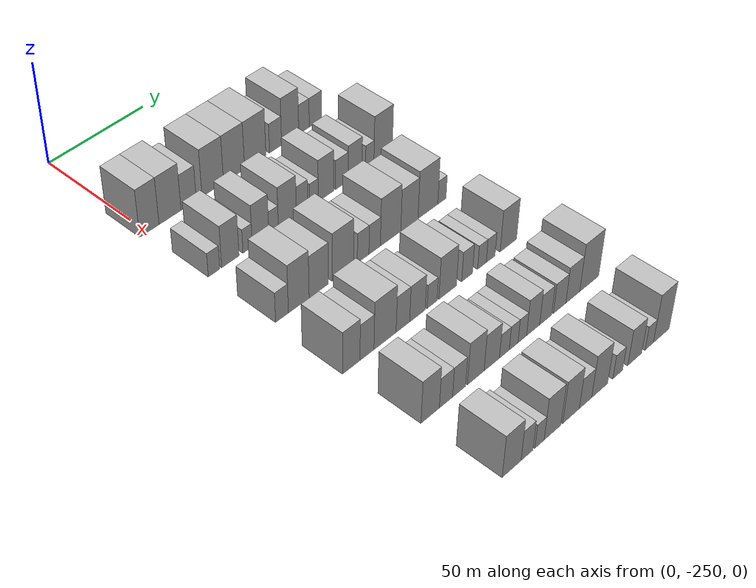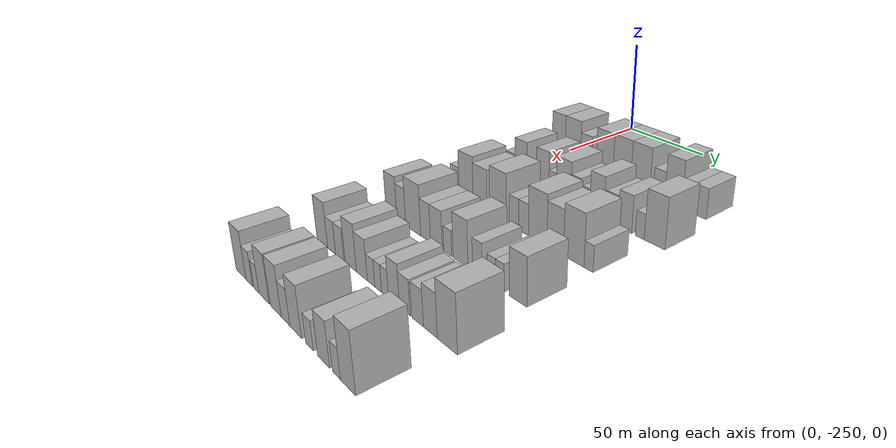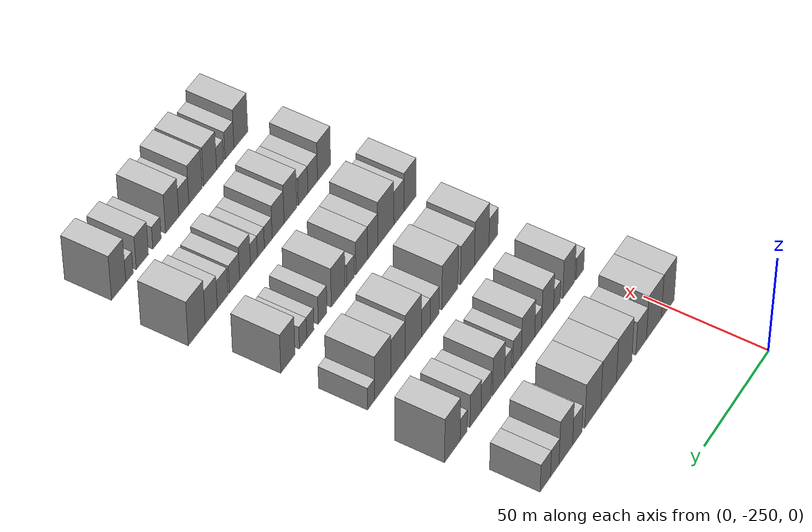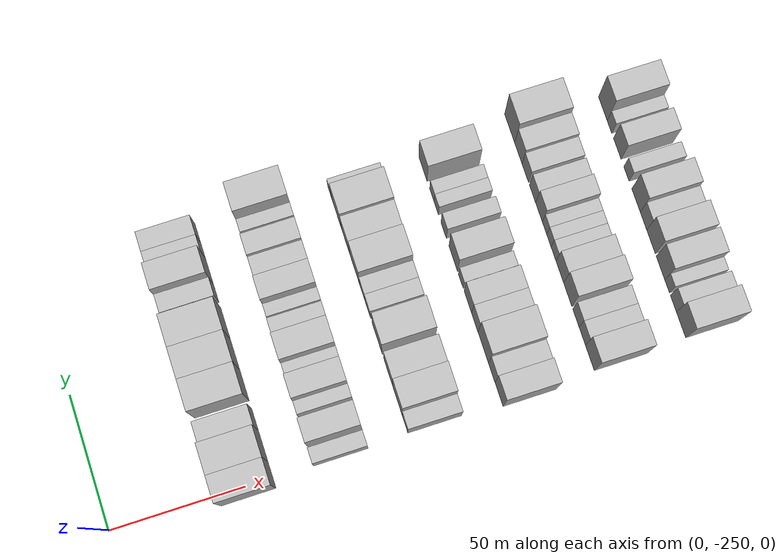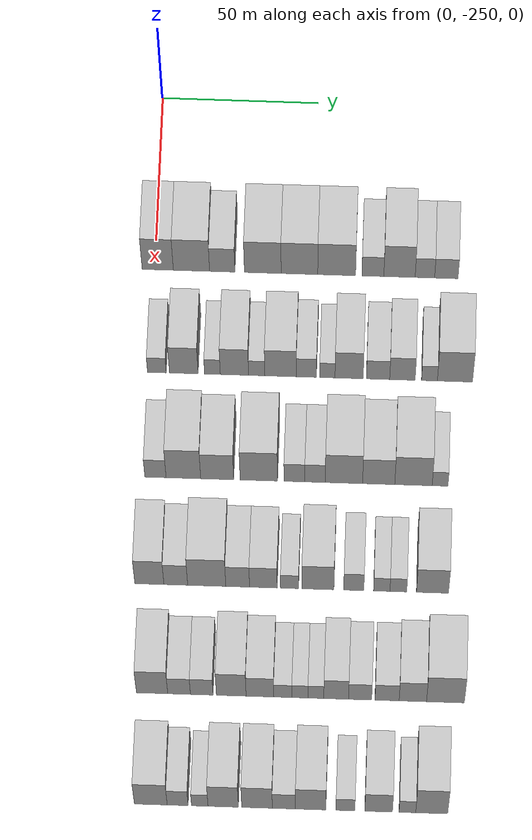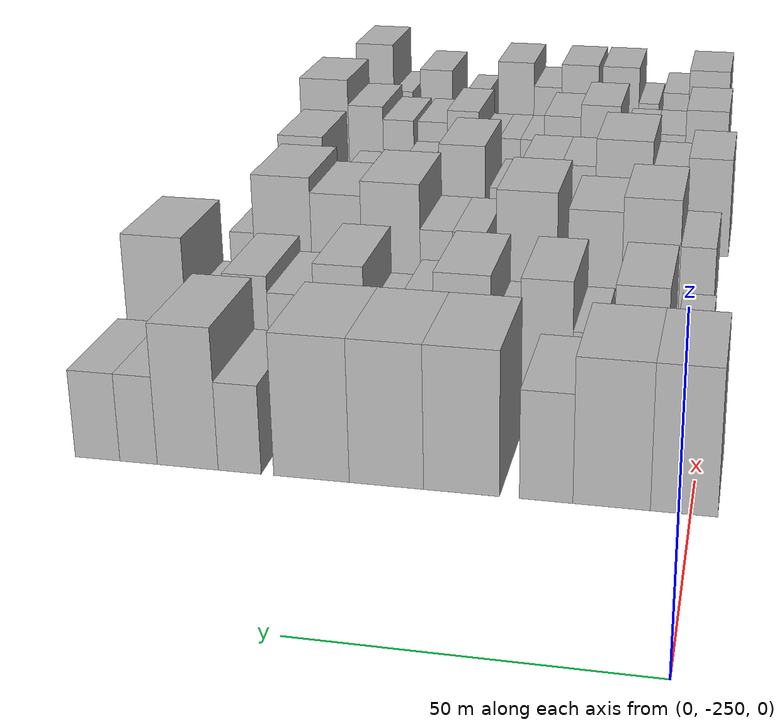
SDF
<sdf version="1.6">
 <world name="default">
  <model name="building_36">
   <static>1</static>
   <pose>50.0000 -248.9890 0 0.000000 0.000000 0.000000</pose>
   <link name="link">
    <pose>0 0 12.00 0 0 0</pose>
    <collision name="collision"><geometry><box><size>20.0000 9.8634 24.0000</size></box></geometry></collision>
    <visual name="visual">
     <cast_shadows>0</cast_shadows>
     <geometry><box><size>20.0000 9.8634 24.0000</size></box></geometry>
     <material>
      <script>
       <uri>model://HANNAS_wall/materials/scripts</uri>
       <uri>model://HANNAS_wall/materials/textures</uri>
       <name>vrc/HANNAS_wall</name>
      </script>
     </material>
    </visual>
   </link>
  </model>
  <model name="building_37">
   <static>1</static>
   <pose>50.0000 -238.3207 0 0.000000 0.000000 0.000000</pose>
   <link name="link">
    <pose>0 0 12.00 0 0 0</pose>
    <collision name="collision"><geometry><box><size>20.0000 11.4732 24.0000</size></box></geometry></collision>
    <visual name="visual">
     <cast_shadows>0</cast_shadows>
     <geometry><box><size>20.0000 11.4732 24.0000</size></box></geometry>
     <material>
      <script>
       <uri>model://HANNAS_wall/materials/scripts</uri>
       <uri>model://HANNAS_wall/materials/textures</uri>
       <name>vrc/HANNAS_wall</name>
      </script>
     </material>
    </visual>
   </link>
  </model>
  <model name="building_38">
   <static>1</static>
   <pose>50.0000 -228.5646 0 0.000000 0.000000 0.000000</pose>
   <link name="link">
    <pose>0 0 9.00 0 0 0</pose>
    <collision name="collision"><geometry><box><size>20.0000 8.0390 18.0000</size></box></geometry></collision>
    <visual name="visual">
     <cast_shadows>0</cast_shadows>
     <geometry><box><size>20.0000 8.0390 18.0000</size></box></geometry>
     <material>
      <script>
       <uri>model://HANNAS_wall/materials/scripts</uri>
       <uri>model://HANNAS_wall/materials/textures</uri>
       <name>vrc/HANNAS_wall</name>
      </script>
     </material>
    </visual>
   </link>
  </model>
  <model name="building_39">
   <static>1</static>
   <pose>50.0000 -215.7369 0 0.000000 0.000000 0.000000</pose>
   <link name="link">
    <pose>0 0 12.00 0 0 0</pose>
    <collision name="collision"><geometry><box><size>20.0000 11.6163 24.0000</size></box></geometry></collision>
    <visual name="visual">
     <cast_shadows>0</cast_shadows>
     <geometry><box><size>20.0000 11.6163 24.0000</size></box></geometry>
     <material>
      <script>
       <uri>model://HANNAS_wall/materials/scripts</uri>
       <uri>model://HANNAS_wall/materials/textures</uri>
       <name>vrc/HANNAS_wall</name>
      </script>
     </material>
    </visual>
   </link>
  </model>
  <model name="building_40">
   <static>1</static>
   <pose>50.0000 -204.1400 0 0.000000 0.000000 0.000000</pose>
   <link name="link">
    <pose>0 0 12.00 0 0 0</pose>
    <collision name="collision"><geometry><box><size>20.0000 11.5776 24.0000</size></box></geometry></collision>
    <visual name="visual">
     <cast_shadows>0</cast_shadows>
     <geometry><box><size>20.0000 11.5776 24.0000</size></box></geometry>
     <material>
      <script>
       <uri>model://HANNAS_wall/materials/scripts</uri>
       <uri>model://HANNAS_wall/materials/textures</uri>
       <name>vrc/HANNAS_wall</name>
      </script>
     </material>
    </visual>
   </link>
  </model>
  <model name="building_41">
   <static>1</static>
   <pose>50.0000 -192.3746 0 0.000000 0.000000 0.000000</pose>
   <link name="link">
    <pose>0 0 12.00 0 0 0</pose>
    <collision name="collision"><geometry><box><size>20.0000 11.9531 24.0000</size></box></geometry></collision>
    <visual name="visual">
     <cast_shadows>0</cast_shadows>
     <geometry><box><size>20.0000 11.9531 24.0000</size></box></geometry>
     <material>
      <script>
       <uri>model://HANNAS_wall/materials/scripts</uri>
       <uri>model://HANNAS_wall/materials/textures</uri>
       <name>vrc/HANNAS_wall</name>
      </script>
     </material>
    </visual>
   </link>
  </model>
  <model name="building_42">
   <static>1</static>
   <pose>50.0000 -180.9370 0 0.000000 0.000000 0.000000</pose>
   <link name="link">
    <pose>0 0 7.50 0 0 0</pose>
    <collision name="collision"><geometry><box><size>20.0000 6.9222 15.0000</size></box></geometry></collision>
    <visual name="visual">
     <cast_shadows>0</cast_shadows>
     <geometry><box><size>20.0000 6.9222 15.0000</size></box></geometry>
     <material>
      <script>
       <uri>model://HANNAS_wall/materials/scripts</uri>
       <uri>model://HANNAS_wall/materials/textures</uri>
       <name>vrc/HANNAS_wall</name>
      </script>
     </material>
    </visual>
   </link>
  </model>
  <model name="building_43">
   <static>1</static>
   <pose>50.0000 -172.5213 0 0.000000 0.000000 0.000000</pose>
   <link name="link">
    <pose>0 0 12.00 0 0 0</pose>
    <collision name="collision"><geometry><box><size>20.0000 9.9091 24.0000</size></box></geometry></collision>
    <visual name="visual">
     <cast_shadows>0</cast_shadows>
     <geometry><box><size>20.0000 9.9091 24.0000</size></box></geometry>
     <material>
      <script>
       <uri>model://HANNAS_wall/materials/scripts</uri>
       <uri>model://HANNAS_wall/materials/textures</uri>
       <name>vrc/HANNAS_wall</name>
      </script>
     </material>
    </visual>
   </link>
  </model>
  <model name="building_44">
   <static>1</static>
   <pose>50.0000 -164.4903 0 0.000000 0.000000 0.000000</pose>
   <link name="link">
    <pose>0 0 7.50 0 0 0</pose>
    <collision name="collision"><geometry><box><size>20.0000 6.1529 15.0000</size></box></geometry></collision>
    <visual name="visual">
     <cast_shadows>0</cast_shadows>
     <geometry><box><size>20.0000 6.1529 15.0000</size></box></geometry>
     <material>
      <script>
       <uri>model://HANNAS_wall/materials/scripts</uri>
       <uri>model://HANNAS_wall/materials/textures</uri>
       <name>vrc/HANNAS_wall</name>
      </script>
     </material>
    </visual>
   </link>
  </model>
  <model name="building_45">
   <static>1</static>
   <pose>50.0000 -157.7162 0 0.000000 0.000000 0.000000</pose>
   <link name="link">
    <pose>0 0 7.50 0 0 0</pose>
    <collision name="collision"><geometry><box><size>20.0000 7.3955 15.0000</size></box></geometry></collision>
    <visual name="visual">
     <cast_shadows>0</cast_shadows>
     <geometry><box><size>20.0000 7.3955 15.0000</size></box></geometry>
     <material>
      <script>
       <uri>model://HANNAS_wall/materials/scripts</uri>
       <uri>model://HANNAS_wall/materials/textures</uri>
       <name>vrc/HANNAS_wall</name>
      </script>
     </material>
    </visual>
   </link>
  </model>
  <model name="building_163">
   <static>1</static>
   <pose>85.0000 -247.6620 0 0.000000 0.000000 0.000000</pose>
   <link name="link">
    <pose>0 0 6.00 0 0 0</pose>
    <collision name="collision"><geometry><box><size>20.0000 5.8705 12.0000</size></box></geometry></collision>
    <visual name="visual">
     <cast_shadows>0</cast_shadows>
     <geometry><box><size>20.0000 5.8705 12.0000</size></box></geometry>
     <material>
      <script>
       <uri>model://HANNAS_wall/materials/scripts</uri>
       <uri>model://HANNAS_wall/materials/textures</uri>
       <name>vrc/HANNAS_wall</name>
      </script>
     </material>
    </visual>
   </link>
  </model>
  <model name="building_164">
   <static>1</static>
   <pose>85.0000 -239.2279 0 0.000000 0.000000 0.000000</pose>
   <link name="link">
    <pose>0 0 10.50 0 0 0</pose>
    <collision name="collision"><geometry><box><size>20.0000 8.9978 21.0000</size></box></geometry></collision>
    <visual name="visual">
     <cast_shadows>0</cast_shadows>
     <geometry><box><size>20.0000 8.9978 21.0000</size></box></geometry>
     <material>
      <script>
       <uri>model://HANNAS_wall/materials/scripts</uri>
       <uri>model://HANNAS_wall/materials/textures</uri>
       <name>vrc/HANNAS_wall</name>
      </script>
     </material>
    </visual>
   </link>
  </model>
  <model name="building_165">
   <static>1</static>
   <pose>85.0000 -230.2642 0 0.000000 0.000000 0.000000</pose>
   <link name="link">
    <pose>0 0 6.00 0 0 0</pose>
    <collision name="collision"><geometry><box><size>20.0000 4.9294 12.0000</size></box></geometry></collision>
    <visual name="visual">
     <cast_shadows>0</cast_shadows>
     <geometry><box><size>20.0000 4.9294 12.0000</size></box></geometry>
     <material>
      <script>
       <uri>model://HANNAS_wall/materials/scripts</uri>
       <uri>model://HANNAS_wall/materials/textures</uri>
       <name>vrc/HANNAS_wall</name>
      </script>
     </material>
    </visual>
   </link>
  </model>
  <model name="building_166">
   <static>1</static>
   <pose>85.0000 -223.3699 0 0.000000 0.000000 0.000000</pose>
   <link name="link">
    <pose>0 0 10.50 0 0 0</pose>
    <collision name="collision"><geometry><box><size>20.0000 8.8592 21.0000</size></box></geometry></collision>
    <visual name="visual">
     <cast_shadows>0</cast_shadows>
     <geometry><box><size>20.0000 8.8592 21.0000</size></box></geometry>
     <material>
      <script>
       <uri>model://HANNAS_wall/materials/scripts</uri>
       <uri>model://HANNAS_wall/materials/textures</uri>
       <name>vrc/HANNAS_wall</name>
      </script>
     </material>
    </visual>
   </link>
  </model>
  <model name="building_167">
   <static>1</static>
   <pose>85.0000 -216.3905 0 0.000000 0.000000 0.000000</pose>
   <link name="link">
    <pose>0 0 6.00 0 0 0</pose>
    <collision name="collision"><geometry><box><size>20.0000 5.0996 12.0000</size></box></geometry></collision>
    <visual name="visual">
     <cast_shadows>0</cast_shadows>
     <geometry><box><size>20.0000 5.0996 12.0000</size></box></geometry>
     <material>
      <script>
       <uri>model://HANNAS_wall/materials/scripts</uri>
       <uri>model://HANNAS_wall/materials/textures</uri>
       <name>vrc/HANNAS_wall</name>
      </script>
     </material>
    </visual>
   </link>
  </model>
  <model name="building_168">
   <static>1</static>
   <pose>85.0000 -208.9010 0 0.000000 0.000000 0.000000</pose>
   <link name="link">
    <pose>0 0 10.50 0 0 0</pose>
    <collision name="collision"><geometry><box><size>20.0000 9.8794 21.0000</size></box></geometry></collision>
    <visual name="visual">
     <cast_shadows>0</cast_shadows>
     <geometry><box><size>20.0000 9.8794 21.0000</size></box></geometry>
     <material>
      <script>
       <uri>model://HANNAS_wall/materials/scripts</uri>
       <uri>model://HANNAS_wall/materials/textures</uri>
       <name>vrc/HANNAS_wall</name>
      </script>
     </material>
    </visual>
   </link>
  </model>
  <model name="building_169">
   <static>1</static>
   <pose>85.0000 -200.8206 0 0.000000 0.000000 0.000000</pose>
   <link name="link">
    <pose>0 0 7.50 0 0 0</pose>
    <collision name="collision"><geometry><box><size>20.0000 6.2812 15.0000</size></box></geometry></collision>
    <visual name="visual">
     <cast_shadows>0</cast_shadows>
     <geometry><box><size>20.0000 6.2812 15.0000</size></box></geometry>
     <material>
      <script>
       <uri>model://HANNAS_wall/materials/scripts</uri>
       <uri>model://HANNAS_wall/materials/textures</uri>
       <name>vrc/HANNAS_wall</name>
      </script>
     </material>
    </visual>
   </link>
  </model>
  <model name="building_170">
   <static>1</static>
   <pose>85.0000 -194.2725 0 0.000000 0.000000 0.000000</pose>
   <link name="link">
    <pose>0 0 6.00 0 0 0</pose>
    <collision name="collision"><geometry><box><size>20.0000 4.8150 12.0000</size></box></geometry></collision>
    <visual name="visual">
     <cast_shadows>0</cast_shadows>
     <geometry><box><size>20.0000 4.8150 12.0000</size></box></geometry>
     <material>
      <script>
       <uri>model://HANNAS_wall/materials/scripts</uri>
       <uri>model://HANNAS_wall/materials/textures</uri>
       <name>vrc/HANNAS_wall</name>
      </script>
     </material>
    </visual>
   </link>
  </model>
  <model name="building_171">
   <static>1</static>
   <pose>85.0000 -187.4508 0 0.000000 0.000000 0.000000</pose>
   <link name="link">
    <pose>0 0 10.50 0 0 0</pose>
    <collision name="collision"><geometry><box><size>20.0000 8.8284 21.0000</size></box></geometry></collision>
    <visual name="visual">
     <cast_shadows>0</cast_shadows>
     <geometry><box><size>20.0000 8.8284 21.0000</size></box></geometry>
     <material>
      <script>
       <uri>model://HANNAS_wall/materials/scripts</uri>
       <uri>model://HANNAS_wall/materials/textures</uri>
       <name>vrc/HANNAS_wall</name>
      </script>
     </material>
    </visual>
   </link>
  </model>
  <model name="building_172">
   <static>1</static>
   <pose>85.0000 -178.3915 0 0.000000 0.000000 0.000000</pose>
   <link name="link">
    <pose>0 0 7.50 0 0 0</pose>
    <collision name="collision"><geometry><box><size>20.0000 7.2902 15.0000</size></box></geometry></collision>
    <visual name="visual">
     <cast_shadows>0</cast_shadows>
     <geometry><box><size>20.0000 7.2902 15.0000</size></box></geometry>
     <material>
      <script>
       <uri>model://HANNAS_wall/materials/scripts</uri>
       <uri>model://HANNAS_wall/materials/textures</uri>
       <name>vrc/HANNAS_wall</name>
      </script>
     </material>
    </visual>
   </link>
  </model>
  <model name="building_173">
   <static>1</static>
   <pose>85.0000 -170.7647 0 0.000000 0.000000 0.000000</pose>
   <link name="link">
    <pose>0 0 9.00 0 0 0</pose>
    <collision name="collision"><geometry><box><size>20.0000 7.9636 18.0000</size></box></geometry></collision>
    <visual name="visual">
     <cast_shadows>0</cast_shadows>
     <geometry><box><size>20.0000 7.9636 18.0000</size></box></geometry>
     <material>
      <script>
       <uri>model://HANNAS_wall/materials/scripts</uri>
       <uri>model://HANNAS_wall/materials/textures</uri>
       <name>vrc/HANNAS_wall</name>
      </script>
     </material>
    </visual>
   </link>
  </model>
  <model name="building_174">
   <static>1</static>
   <pose>85.0000 -162.3000 0 0.000000 0.000000 0.000000</pose>
   <link name="link">
    <pose>0 0 6.00 0 0 0</pose>
    <collision name="collision"><geometry><box><size>20.0000 4.9658 12.0000</size></box></geometry></collision>
    <visual name="visual">
     <cast_shadows>0</cast_shadows>
     <geometry><box><size>20.0000 4.9658 12.0000</size></box></geometry>
     <material>
      <script>
       <uri>model://HANNAS_wall/materials/scripts</uri>
       <uri>model://HANNAS_wall/materials/textures</uri>
       <name>vrc/HANNAS_wall</name>
      </script>
     </material>
    </visual>
   </link>
  </model>
  <model name="building_175">
   <static>1</static>
   <pose>85.0000 -154.3198 0 0.000000 0.000000 0.000000</pose>
   <link name="link">
    <pose>0 0 12.00 0 0 0</pose>
    <collision name="collision"><geometry><box><size>20.0000 10.9947 24.0000</size></box></geometry></collision>
    <visual name="visual">
     <cast_shadows>0</cast_shadows>
     <geometry><box><size>20.0000 10.9947 24.0000</size></box></geometry>
     <material>
      <script>
       <uri>model://HANNAS_wall/materials/scripts</uri>
       <uri>model://HANNAS_wall/materials/textures</uri>
       <name>vrc/HANNAS_wall</name>
      </script>
     </material>
    </visual>
   </link>
  </model>
  <model name="building_290">
   <static>1</static>
   <pose>120.0000 -246.5164 0 0.000000 0.000000 0.000000</pose>
   <link name="link">
    <pose>0 0 7.50 0 0 0</pose>
    <collision name="collision"><geometry><box><size>20.0000 6.5696 15.0000</size></box></geometry></collision>
    <visual name="visual">
     <cast_shadows>0</cast_shadows>
     <geometry><box><size>20.0000 6.5696 15.0000</size></box></geometry>
     <material>
      <script>
       <uri>model://HANNAS_wall/materials/scripts</uri>
       <uri>model://HANNAS_wall/materials/textures</uri>
       <name>vrc/HANNAS_wall</name>
      </script>
     </material>
    </visual>
   </link>
  </model>
  <model name="building_291">
   <static>1</static>
   <pose>120.0000 -237.8581 0 0.000000 0.000000 0.000000</pose>
   <link name="link">
    <pose>0 0 12.00 0 0 0</pose>
    <collision name="collision"><geometry><box><size>20.0000 10.7470 24.0000</size></box></geometry></collision>
    <visual name="visual">
     <cast_shadows>0</cast_shadows>
     <geometry><box><size>20.0000 10.7470 24.0000</size></box></geometry>
     <material>
      <script>
       <uri>model://HANNAS_wall/materials/scripts</uri>
       <uri>model://HANNAS_wall/materials/textures</uri>
       <name>vrc/HANNAS_wall</name>
      </script>
     </material>
    </visual>
   </link>
  </model>
  <model name="building_292">
   <static>1</static>
   <pose>120.0000 -227.3629 0 0.000000 0.000000 0.000000</pose>
   <link name="link">
    <pose>0 0 10.50 0 0 0</pose>
    <collision name="collision"><geometry><box><size>20.0000 10.2434 21.0000</size></box></geometry></collision>
    <visual name="visual">
     <cast_shadows>0</cast_shadows>
     <geometry><box><size>20.0000 10.2434 21.0000</size></box></geometry>
     <material>
      <script>
       <uri>model://HANNAS_wall/materials/scripts</uri>
       <uri>model://HANNAS_wall/materials/textures</uri>
       <name>vrc/HANNAS_wall</name>
      </script>
     </material>
    </visual>
   </link>
  </model>
  <model name="building_293">
   <static>1</static>
   <pose>120.0000 -214.4385 0 0.000000 0.000000 0.000000</pose>
   <link name="link">
    <pose>0 0 12.00 0 0 0</pose>
    <collision name="collision"><geometry><box><size>20.0000 11.6056 24.0000</size></box></geometry></collision>
    <visual name="visual">
     <cast_shadows>0</cast_shadows>
     <geometry><box><size>20.0000 11.6056 24.0000</size></box></geometry>
     <material>
      <script>
       <uri>model://HANNAS_wall/materials/scripts</uri>
       <uri>model://HANNAS_wall/materials/textures</uri>
       <name>vrc/HANNAS_wall</name>
      </script>
     </material>
    </visual>
   </link>
  </model>
  <model name="building_294">
   <static>1</static>
   <pose>120.0000 -203.4127 0 0.000000 0.000000 0.000000</pose>
   <link name="link">
    <pose>0 0 7.50 0 0 0</pose>
    <collision name="collision"><geometry><box><size>20.0000 6.4459 15.0000</size></box></geometry></collision>
    <visual name="visual">
     <cast_shadows>0</cast_shadows>
     <geometry><box><size>20.0000 6.4459 15.0000</size></box></geometry>
     <material>
      <script>
       <uri>model://HANNAS_wall/materials/scripts</uri>
       <uri>model://HANNAS_wall/materials/textures</uri>
       <name>vrc/HANNAS_wall</name>
      </script>
     </material>
    </visual>
   </link>
  </model>
  <model name="building_295">
   <static>1</static>
   <pose>120.0000 -197.0071 0 0.000000 0.000000 0.000000</pose>
   <link name="link">
    <pose>0 0 7.50 0 0 0</pose>
    <collision name="collision"><geometry><box><size>20.0000 6.3654 15.0000</size></box></geometry></collision>
    <visual name="visual">
     <cast_shadows>0</cast_shadows>
     <geometry><box><size>20.0000 6.3654 15.0000</size></box></geometry>
     <material>
      <script>
       <uri>model://HANNAS_wall/materials/scripts</uri>
       <uri>model://HANNAS_wall/materials/textures</uri>
       <name>vrc/HANNAS_wall</name>
      </script>
     </material>
    </visual>
   </link>
  </model>
  <model name="building_296">
   <static>1</static>
   <pose>120.0000 -188.0483 0 0.000000 0.000000 0.000000</pose>
   <link name="link">
    <pose>0 0 12.00 0 0 0</pose>
    <collision name="collision"><geometry><box><size>20.0000 11.5523 24.0000</size></box></geometry></collision>
    <visual name="visual">
     <cast_shadows>0</cast_shadows>
     <geometry><box><size>20.0000 11.5523 24.0000</size></box></geometry>
     <material>
      <script>
       <uri>model://HANNAS_wall/materials/scripts</uri>
       <uri>model://HANNAS_wall/materials/textures</uri>
       <name>vrc/HANNAS_wall</name>
      </script>
     </material>
    </visual>
   </link>
  </model>
  <model name="building_297">
   <static>1</static>
   <pose>120.0000 -177.2851 0 0.000000 0.000000 0.000000</pose>
   <link name="link">
    <pose>0 0 10.50 0 0 0</pose>
    <collision name="collision"><geometry><box><size>20.0000 9.9741 21.0000</size></box></geometry></collision>
    <visual name="visual">
     <cast_shadows>0</cast_shadows>
     <geometry><box><size>20.0000 9.9741 21.0000</size></box></geometry>
     <material>
      <script>
       <uri>model://HANNAS_wall/materials/scripts</uri>
       <uri>model://HANNAS_wall/materials/textures</uri>
       <name>vrc/HANNAS_wall</name>
      </script>
     </material>
    </visual>
   </link>
  </model>
  <model name="building_298">
   <static>1</static>
   <pose>120.0000 -166.5069 0 0.000000 0.000000 0.000000</pose>
   <link name="link">
    <pose>0 0 12.00 0 0 0</pose>
    <collision name="collision"><geometry><box><size>20.0000 11.5822 24.0000</size></box></geometry></collision>
    <visual name="visual">
     <cast_shadows>0</cast_shadows>
     <geometry><box><size>20.0000 11.5822 24.0000</size></box></geometry>
     <material>
      <script>
       <uri>model://HANNAS_wall/materials/scripts</uri>
       <uri>model://HANNAS_wall/materials/textures</uri>
       <name>vrc/HANNAS_wall</name>
      </script>
     </material>
    </visual>
   </link>
  </model>
  <model name="building_299">
   <static>1</static>
   <pose>120.0000 -158.2672 0 0.000000 0.000000 0.000000</pose>
   <link name="link">
    <pose>0 0 6.00 0 0 0</pose>
    <collision name="collision"><geometry><box><size>20.0000 4.8972 12.0000</size></box></geometry></collision>
    <visual name="visual">
     <cast_shadows>0</cast_shadows>
     <geometry><box><size>20.0000 4.8972 12.0000</size></box></geometry>
     <material>
      <script>
       <uri>model://HANNAS_wall/materials/scripts</uri>
       <uri>model://HANNAS_wall/materials/textures</uri>
       <name>vrc/HANNAS_wall</name>
      </script>
     </material>
    </visual>
   </link>
  </model>
  <model name="building_404">
   <static>1</static>
   <pose>155.0000 -246.7900 0 0.000000 0.000000 0.000000</pose>
   <link name="link">
    <pose>0 0 10.50 0 0 0</pose>
    <collision name="collision"><geometry><box><size>20.0000 8.9187 21.0000</size></box></geometry></collision>
    <visual name="visual">
     <cast_shadows>0</cast_shadows>
     <geometry><box><size>20.0000 8.9187 21.0000</size></box></geometry>
     <material>
      <script>
       <uri>model://HANNAS_wall/materials/scripts</uri>
       <uri>model://HANNAS_wall/materials/textures</uri>
       <name>vrc/HANNAS_wall</name>
      </script>
     </material>
    </visual>
   </link>
  </model>
  <model name="building_405">
   <static>1</static>
   <pose>155.0000 -238.6819 0 0.000000 0.000000 0.000000</pose>
   <link name="link">
    <pose>0 0 9.00 0 0 0</pose>
    <collision name="collision"><geometry><box><size>20.0000 7.2975 18.0000</size></box></geometry></collision>
    <visual name="visual">
     <cast_shadows>0</cast_shadows>
     <geometry><box><size>20.0000 7.2975 18.0000</size></box></geometry>
     <material>
      <script>
       <uri>model://HANNAS_wall/materials/scripts</uri>
       <uri>model://HANNAS_wall/materials/textures</uri>
       <name>vrc/HANNAS_wall</name>
      </script>
     </material>
    </visual>
   </link>
  </model>
  <model name="building_406">
   <static>1</static>
   <pose>155.0000 -229.1750 0 0.000000 0.000000 0.000000</pose>
   <link name="link">
    <pose>0 0 12.00 0 0 0</pose>
    <collision name="collision"><geometry><box><size>20.0000 11.7163 24.0000</size></box></geometry></collision>
    <visual name="visual">
     <cast_shadows>0</cast_shadows>
     <geometry><box><size>20.0000 11.7163 24.0000</size></box></geometry>
     <material>
      <script>
       <uri>model://HANNAS_wall/materials/scripts</uri>
       <uri>model://HANNAS_wall/materials/textures</uri>
       <name>vrc/HANNAS_wall</name>
      </script>
     </material>
    </visual>
   </link>
  </model>
  <model name="building_407">
   <static>1</static>
   <pose>155.0000 -219.6694 0 0.000000 0.000000 0.000000</pose>
   <link name="link">
    <pose>0 0 9.00 0 0 0</pose>
    <collision name="collision"><geometry><box><size>20.0000 7.2948 18.0000</size></box></geometry></collision>
    <visual name="visual">
     <cast_shadows>0</cast_shadows>
     <geometry><box><size>20.0000 7.2948 18.0000</size></box></geometry>
     <material>
      <script>
       <uri>model://HANNAS_wall/materials/scripts</uri>
       <uri>model://HANNAS_wall/materials/textures</uri>
       <name>vrc/HANNAS_wall</name>
      </script>
     </material>
    </visual>
   </link>
  </model>
  <model name="building_408">
   <static>1</static>
   <pose>155.0000 -211.7751 0 0.000000 0.000000 0.000000</pose>
   <link name="link">
    <pose>0 0 9.00 0 0 0</pose>
    <collision name="collision"><geometry><box><size>20.0000 8.4938 18.0000</size></box></geometry></collision>
    <visual name="visual">
     <cast_shadows>0</cast_shadows>
     <geometry><box><size>20.0000 8.4938 18.0000</size></box></geometry>
     <material>
      <script>
       <uri>model://HANNAS_wall/materials/scripts</uri>
       <uri>model://HANNAS_wall/materials/textures</uri>
       <name>vrc/HANNAS_wall</name>
      </script>
     </material>
    </visual>
   </link>
  </model>
  <model name="building_409">
   <static>1</static>
   <pose>155.0000 -203.7460 0 0.000000 0.000000 0.000000</pose>
   <link name="link">
    <pose>0 0 6.00 0 0 0</pose>
    <collision name="collision"><geometry><box><size>20.0000 5.5644 12.0000</size></box></geometry></collision>
    <visual name="visual">
     <cast_shadows>0</cast_shadows>
     <geometry><box><size>20.0000 5.5644 12.0000</size></box></geometry>
     <material>
      <script>
       <uri>model://HANNAS_wall/materials/scripts</uri>
       <uri>model://HANNAS_wall/materials/textures</uri>
       <name>vrc/HANNAS_wall</name>
      </script>
     </material>
    </visual>
   </link>
  </model>
  <model name="building_410">
   <static>1</static>
   <pose>155.0000 -195.0389 0 0.000000 0.000000 0.000000</pose>
   <link name="link">
    <pose>0 0 10.50 0 0 0</pose>
    <collision name="collision"><geometry><box><size>20.0000 9.8499 21.0000</size></box></geometry></collision>
    <visual name="visual">
     <cast_shadows>0</cast_shadows>
     <geometry><box><size>20.0000 9.8499 21.0000</size></box></geometry>
     <material>
      <script>
       <uri>model://HANNAS_wall/materials/scripts</uri>
       <uri>model://HANNAS_wall/materials/textures</uri>
       <name>vrc/HANNAS_wall</name>
      </script>
     </material>
    </visual>
   </link>
  </model>
  <model name="building_411">
   <static>1</static>
   <pose>155.0000 -184.0282 0 0.000000 0.000000 0.000000</pose>
   <link name="link">
    <pose>0 0 7.50 0 0 0</pose>
    <collision name="collision"><geometry><box><size>20.0000 6.1715 15.0000</size></box></geometry></collision>
    <visual name="visual">
     <cast_shadows>0</cast_shadows>
     <geometry><box><size>20.0000 6.1715 15.0000</size></box></geometry>
     <material>
      <script>
       <uri>model://HANNAS_wall/materials/scripts</uri>
       <uri>model://HANNAS_wall/materials/textures</uri>
       <name>vrc/HANNAS_wall</name>
      </script>
     </material>
    </visual>
   </link>
  </model>
  <model name="building_412">
   <static>1</static>
   <pose>155.0000 -175.4380 0 0.000000 0.000000 0.000000</pose>
   <link name="link">
    <pose>0 0 6.00 0 0 0</pose>
    <collision name="collision"><geometry><box><size>20.0000 5.0089 12.0000</size></box></geometry></collision>
    <visual name="visual">
     <cast_shadows>0</cast_shadows>
     <geometry><box><size>20.0000 5.0089 12.0000</size></box></geometry>
     <material>
      <script>
       <uri>model://HANNAS_wall/materials/scripts</uri>
       <uri>model://HANNAS_wall/materials/textures</uri>
       <name>vrc/HANNAS_wall</name>
      </script>
     </material>
    </visual>
   </link>
  </model>
  <model name="building_413">
   <static>1</static>
   <pose>155.0000 -170.3560 0 0.000000 0.000000 0.000000</pose>
   <link name="link">
    <pose>0 0 6.00 0 0 0</pose>
    <collision name="collision"><geometry><box><size>20.0000 5.1551 12.0000</size></box></geometry></collision>
    <visual name="visual">
     <cast_shadows>0</cast_shadows>
     <geometry><box><size>20.0000 5.1551 12.0000</size></box></geometry>
     <material>
      <script>
       <uri>model://HANNAS_wall/materials/scripts</uri>
       <uri>model://HANNAS_wall/materials/textures</uri>
       <name>vrc/HANNAS_wall</name>
      </script>
     </material>
    </visual>
   </link>
  </model>
  <model name="building_414">
   <static>1</static>
   <pose>155.0000 -159.8691 0 0.000000 0.000000 0.000000</pose>
   <link name="link">
    <pose>0 0 10.50 0 0 0</pose>
    <collision name="collision"><geometry><box><size>20.0000 9.8188 21.0000</size></box></geometry></collision>
    <visual name="visual">
     <cast_shadows>0</cast_shadows>
     <geometry><box><size>20.0000 9.8188 21.0000</size></box></geometry>
     <material>
      <script>
       <uri>model://HANNAS_wall/materials/scripts</uri>
       <uri>model://HANNAS_wall/materials/textures</uri>
       <name>vrc/HANNAS_wall</name>
      </script>
     </material>
    </visual>
   </link>
  </model>
  <model name="building_529">
   <static>1</static>
   <pose>190.0000 -244.3655 0 0.000000 0.000000 0.000000</pose>
   <link name="link">
    <pose>0 0 10.50 0 0 0</pose>
    <collision name="collision"><geometry><box><size>20.0000 9.5100 21.0000</size></box></geometry></collision>
    <visual name="visual">
     <cast_shadows>0</cast_shadows>
     <geometry><box><size>20.0000 9.5100 21.0000</size></box></geometry>
     <material>
      <script>
       <uri>model://HANNAS_wall/materials/scripts</uri>
       <uri>model://HANNAS_wall/materials/textures</uri>
       <name>vrc/HANNAS_wall</name>
      </script>
     </material>
    </visual>
   </link>
  </model>
  <model name="building_530">
   <static>1</static>
   <pose>190.0000 -236.1559 0 0.000000 0.000000 0.000000</pose>
   <link name="link">
    <pose>0 0 7.50 0 0 0</pose>
    <collision name="collision"><geometry><box><size>20.0000 6.9092 15.0000</size></box></geometry></collision>
    <visual name="visual">
     <cast_shadows>0</cast_shadows>
     <geometry><box><size>20.0000 6.9092 15.0000</size></box></geometry>
     <material>
      <script>
       <uri>model://HANNAS_wall/materials/scripts</uri>
       <uri>model://HANNAS_wall/materials/textures</uri>
       <name>vrc/HANNAS_wall</name>
      </script>
     </material>
    </visual>
   </link>
  </model>
  <model name="building_531">
   <static>1</static>
   <pose>190.0000 -229.2512 0 0.000000 0.000000 0.000000</pose>
   <link name="link">
    <pose>0 0 7.50 0 0 0</pose>
    <collision name="collision"><geometry><box><size>20.0000 6.9002 15.0000</size></box></geometry></collision>
    <visual name="visual">
     <cast_shadows>0</cast_shadows>
     <geometry><box><size>20.0000 6.9002 15.0000</size></box></geometry>
     <material>
      <script>
       <uri>model://HANNAS_wall/materials/scripts</uri>
       <uri>model://HANNAS_wall/materials/textures</uri>
       <name>vrc/HANNAS_wall</name>
      </script>
     </material>
    </visual>
   </link>
  </model>
  <model name="building_532">
   <static>1</static>
   <pose>190.0000 -220.2849 0 0.000000 0.000000 0.000000</pose>
   <link name="link">
    <pose>0 0 10.50 0 0 0</pose>
    <collision name="collision"><geometry><box><size>20.0000 9.0324 21.0000</size></box></geometry></collision>
    <visual name="visual">
     <cast_shadows>0</cast_shadows>
     <geometry><box><size>20.0000 9.0324 21.0000</size></box></geometry>
     <material>
      <script>
       <uri>model://HANNAS_wall/materials/scripts</uri>
       <uri>model://HANNAS_wall/materials/textures</uri>
       <name>vrc/HANNAS_wall</name>
      </script>
     </material>
    </visual>
   </link>
  </model>
  <model name="building_533">
   <static>1</static>
   <pose>190.0000 -211.5633 0 0.000000 0.000000 0.000000</pose>
   <link name="link">
    <pose>0 0 9.00 0 0 0</pose>
    <collision name="collision"><geometry><box><size>20.0000 8.4109 18.0000</size></box></geometry></collision>
    <visual name="visual">
     <cast_shadows>0</cast_shadows>
     <geometry><box><size>20.0000 8.4109 18.0000</size></box></geometry>
     <material>
      <script>
       <uri>model://HANNAS_wall/materials/scripts</uri>
       <uri>model://HANNAS_wall/materials/textures</uri>
       <name>vrc/HANNAS_wall</name>
      </script>
     </material>
    </visual>
   </link>
  </model>
  <model name="building_534">
   <static>1</static>
   <pose>190.0000 -204.6074 0 0.000000 0.000000 0.000000</pose>
   <link name="link">
    <pose>0 0 6.00 0 0 0</pose>
    <collision name="collision"><geometry><box><size>20.0000 5.5008 12.0000</size></box></geometry></collision>
    <visual name="visual">
     <cast_shadows>0</cast_shadows>
     <geometry><box><size>20.0000 5.5008 12.0000</size></box></geometry>
     <material>
      <script>
       <uri>model://HANNAS_wall/materials/scripts</uri>
       <uri>model://HANNAS_wall/materials/textures</uri>
       <name>vrc/HANNAS_wall</name>
      </script>
     </material>
    </visual>
   </link>
  </model>
  <model name="building_535">
   <static>1</static>
   <pose>190.0000 -199.4129 0 0.000000 0.000000 0.000000</pose>
   <link name="link">
    <pose>0 0 6.00 0 0 0</pose>
    <collision name="collision"><geometry><box><size>20.0000 4.8882 12.0000</size></box></geometry></collision>
    <visual name="visual">
     <cast_shadows>0</cast_shadows>
     <geometry><box><size>20.0000 4.8882 12.0000</size></box></geometry>
     <material>
      <script>
       <uri>model://HANNAS_wall/materials/scripts</uri>
       <uri>model://HANNAS_wall/materials/textures</uri>
       <name>vrc/HANNAS_wall</name>
      </script>
     </material>
    </visual>
   </link>
  </model>
  <model name="building_536">
   <static>1</static>
   <pose>190.0000 -194.5540 0 0.000000 0.000000 0.000000</pose>
   <link name="link">
    <pose>0 0 6.00 0 0 0</pose>
    <collision name="collision"><geometry><box><size>20.0000 4.8296 12.0000</size></box></geometry></collision>
    <visual name="visual">
     <cast_shadows>0</cast_shadows>
     <geometry><box><size>20.0000 4.8296 12.0000</size></box></geometry>
     <material>
      <script>
       <uri>model://HANNAS_wall/materials/scripts</uri>
       <uri>model://HANNAS_wall/materials/textures</uri>
       <name>vrc/HANNAS_wall</name>
      </script>
     </material>
    </visual>
   </link>
  </model>
  <model name="building_537">
   <static>1</static>
   <pose>190.0000 -188.3816 0 0.000000 0.000000 0.000000</pose>
   <link name="link">
    <pose>0 0 9.00 0 0 0</pose>
    <collision name="collision"><geometry><box><size>20.0000 7.5153 18.0000</size></box></geometry></collision>
    <visual name="visual">
     <cast_shadows>0</cast_shadows>
     <geometry><box><size>20.0000 7.5153 18.0000</size></box></geometry>
     <material>
      <script>
       <uri>model://HANNAS_wall/materials/scripts</uri>
       <uri>model://HANNAS_wall/materials/textures</uri>
       <name>vrc/HANNAS_wall</name>
      </script>
     </material>
    </visual>
   </link>
  </model>
  <model name="building_538">
   <static>1</static>
   <pose>190.0000 -181.1098 0 0.000000 0.000000 0.000000</pose>
   <link name="link">
    <pose>0 0 7.50 0 0 0</pose>
    <collision name="collision"><geometry><box><size>20.0000 7.0282 15.0000</size></box></geometry></collision>
    <visual name="visual">
     <cast_shadows>0</cast_shadows>
     <geometry><box><size>20.0000 7.0282 15.0000</size></box></geometry>
     <material>
      <script>
       <uri>model://HANNAS_wall/materials/scripts</uri>
       <uri>model://HANNAS_wall/materials/textures</uri>
       <name>vrc/HANNAS_wall</name>
      </script>
     </material>
    </visual>
   </link>
  </model>
  <model name="building_539">
   <static>1</static>
   <pose>190.0000 -172.9309 0 0.000000 0.000000 0.000000</pose>
   <link name="link">
    <pose>0 0 7.50 0 0 0</pose>
    <collision name="collision"><geometry><box><size>20.0000 7.3297 15.0000</size></box></geometry></collision>
    <visual name="visual">
     <cast_shadows>0</cast_shadows>
     <geometry><box><size>20.0000 7.3297 15.0000</size></box></geometry>
     <material>
      <script>
       <uri>model://HANNAS_wall/materials/scripts</uri>
       <uri>model://HANNAS_wall/materials/textures</uri>
       <name>vrc/HANNAS_wall</name>
      </script>
     </material>
    </visual>
   </link>
  </model>
  <model name="building_540">
   <static>1</static>
   <pose>190.0000 -165.1013 0 0.000000 0.000000 0.000000</pose>
   <link name="link">
    <pose>0 0 9.00 0 0 0</pose>
    <collision name="collision"><geometry><box><size>20.0000 8.3293 18.0000</size></box></geometry></collision>
    <visual name="visual">
     <cast_shadows>0</cast_shadows>
     <geometry><box><size>20.0000 8.3293 18.0000</size></box></geometry>
     <material>
      <script>
       <uri>model://HANNAS_wall/materials/scripts</uri>
       <uri>model://HANNAS_wall/materials/textures</uri>
       <name>vrc/HANNAS_wall</name>
      </script>
     </material>
    </visual>
   </link>
  </model>
  <model name="building_541">
   <static>1</static>
   <pose>190.0000 -155.1952 0 0.000000 0.000000 0.000000</pose>
   <link name="link">
    <pose>0 0 12.00 0 0 0</pose>
    <collision name="collision"><geometry><box><size>20.0000 11.4829 24.0000</size></box></geometry></collision>
    <visual name="visual">
     <cast_shadows>0</cast_shadows>
     <geometry><box><size>20.0000 11.4829 24.0000</size></box></geometry>
     <material>
      <script>
       <uri>model://HANNAS_wall/materials/scripts</uri>
       <uri>model://HANNAS_wall/materials/textures</uri>
       <name>vrc/HANNAS_wall</name>
      </script>
     </material>
    </visual>
   </link>
  </model>
  <model name="building_657">
   <static>1</static>
   <pose>225.0000 -243.1412 0 0.000000 0.000000 0.000000</pose>
   <link name="link">
    <pose>0 0 10.50 0 0 0</pose>
    <collision name="collision"><geometry><box><size>20.0000 9.8605 21.0000</size></box></geometry></collision>
    <visual name="visual">
     <cast_shadows>0</cast_shadows>
     <geometry><box><size>20.0000 9.8605 21.0000</size></box></geometry>
     <material>
      <script>
       <uri>model://HANNAS_wall/materials/scripts</uri>
       <uri>model://HANNAS_wall/materials/textures</uri>
       <name>vrc/HANNAS_wall</name>
      </script>
     </material>
    </visual>
   </link>
  </model>
  <model name="building_658">
   <static>1</static>
   <pose>225.0000 -235.0533 0 0.000000 0.000000 0.000000</pose>
   <link name="link">
    <pose>0 0 7.50 0 0 0</pose>
    <collision name="collision"><geometry><box><size>20.0000 6.3152 15.0000</size></box></geometry></collision>
    <visual name="visual">
     <cast_shadows>0</cast_shadows>
     <geometry><box><size>20.0000 6.3152 15.0000</size></box></geometry>
     <material>
      <script>
       <uri>model://HANNAS_wall/materials/scripts</uri>
       <uri>model://HANNAS_wall/materials/textures</uri>
       <name>vrc/HANNAS_wall</name>
      </script>
     </material>
    </visual>
   </link>
  </model>
  <model name="building_659">
   <static>1</static>
   <pose>225.0000 -228.4109 0 0.000000 0.000000 0.000000</pose>
   <link name="link">
    <pose>0 0 6.00 0 0 0</pose>
    <collision name="collision"><geometry><box><size>20.0000 4.9696 12.0000</size></box></geometry></collision>
    <visual name="visual">
     <cast_shadows>0</cast_shadows>
     <geometry><box><size>20.0000 4.9696 12.0000</size></box></geometry>
     <material>
      <script>
       <uri>model://HANNAS_wall/materials/scripts</uri>
       <uri>model://HANNAS_wall/materials/textures</uri>
       <name>vrc/HANNAS_wall</name>
      </script>
     </material>
    </visual>
   </link>
  </model>
  <model name="building_660">
   <static>1</static>
   <pose>225.0000 -221.3497 0 0.000000 0.000000 0.000000</pose>
   <link name="link">
    <pose>0 0 10.50 0 0 0</pose>
    <collision name="collision"><geometry><box><size>20.0000 9.1528 21.0000</size></box></geometry></collision>
    <visual name="visual">
     <cast_shadows>0</cast_shadows>
     <geometry><box><size>20.0000 9.1528 21.0000</size></box></geometry>
     <material>
      <script>
       <uri>model://HANNAS_wall/materials/scripts</uri>
       <uri>model://HANNAS_wall/materials/textures</uri>
       <name>vrc/HANNAS_wall</name>
      </script>
     </material>
    </visual>
   </link>
  </model>
  <model name="building_661">
   <static>1</static>
   <pose>225.0000 -211.1671 0 0.000000 0.000000 0.000000</pose>
   <link name="link">
    <pose>0 0 10.50 0 0 0</pose>
    <collision name="collision"><geometry><box><size>20.0000 9.2123 21.0000</size></box></geometry></collision>
    <visual name="visual">
     <cast_shadows>0</cast_shadows>
     <geometry><box><size>20.0000 9.2123 21.0000</size></box></geometry>
     <material>
      <script>
       <uri>model://HANNAS_wall/materials/scripts</uri>
       <uri>model://HANNAS_wall/materials/textures</uri>
       <name>vrc/HANNAS_wall</name>
      </script>
     </material>
    </visual>
   </link>
  </model>
  <model name="building_662">
   <static>1</static>
   <pose>225.0000 -203.0751 0 0.000000 0.000000 0.000000</pose>
   <link name="link">
    <pose>0 0 7.50 0 0 0</pose>
    <collision name="collision"><geometry><box><size>20.0000 6.9718 15.0000</size></box></geometry></collision>
    <visual name="visual">
     <cast_shadows>0</cast_shadows>
     <geometry><box><size>20.0000 6.9718 15.0000</size></box></geometry>
     <material>
      <script>
       <uri>model://HANNAS_wall/materials/scripts</uri>
       <uri>model://HANNAS_wall/materials/textures</uri>
       <name>vrc/HANNAS_wall</name>
      </script>
     </material>
    </visual>
   </link>
  </model>
  <model name="building_663">
   <static>1</static>
   <pose>225.0000 -195.0208 0 0.000000 0.000000 0.000000</pose>
   <link name="link">
    <pose>0 0 10.50 0 0 0</pose>
    <collision name="collision"><geometry><box><size>20.0000 9.1368 21.0000</size></box></geometry></collision>
    <visual name="visual">
     <cast_shadows>0</cast_shadows>
     <geometry><box><size>20.0000 9.1368 21.0000</size></box></geometry>
     <material>
      <script>
       <uri>model://HANNAS_wall/materials/scripts</uri>
       <uri>model://HANNAS_wall/materials/textures</uri>
       <name>vrc/HANNAS_wall</name>
      </script>
     </material>
    </visual>
   </link>
  </model>
  <model name="building_664">
   <static>1</static>
   <pose>225.0000 -184.5934 0 0.000000 0.000000 0.000000</pose>
   <link name="link">
    <pose>0 0 6.00 0 0 0</pose>
    <collision name="collision"><geometry><box><size>20.0000 5.7181 12.0000</size></box></geometry></collision>
    <visual name="visual">
     <cast_shadows>0</cast_shadows>
     <geometry><box><size>20.0000 5.7181 12.0000</size></box></geometry>
     <material>
      <script>
       <uri>model://HANNAS_wall/materials/scripts</uri>
       <uri>model://HANNAS_wall/materials/textures</uri>
       <name>vrc/HANNAS_wall</name>
      </script>
     </material>
    </visual>
   </link>
  </model>
  <model name="building_665">
   <static>1</static>
   <pose>225.0000 -174.5818 0 0.000000 0.000000 0.000000</pose>
   <link name="link">
    <pose>0 0 9.00 0 0 0</pose>
    <collision name="collision"><geometry><box><size>20.0000 8.3051 18.0000</size></box></geometry></collision>
    <visual name="visual">
     <cast_shadows>0</cast_shadows>
     <geometry><box><size>20.0000 8.3051 18.0000</size></box></geometry>
     <material>
      <script>
       <uri>model://HANNAS_wall/materials/scripts</uri>
       <uri>model://HANNAS_wall/materials/textures</uri>
       <name>vrc/HANNAS_wall</name>
      </script>
     </material>
    </visual>
   </link>
  </model>
  <model name="building_666">
   <static>1</static>
   <pose>225.0000 -165.9258 0 0.000000 0.000000 0.000000</pose>
   <link name="link">
    <pose>0 0 6.00 0 0 0</pose>
    <collision name="collision"><geometry><box><size>20.0000 5.0069 12.0000</size></box></geometry></collision>
    <visual name="visual">
     <cast_shadows>0</cast_shadows>
     <geometry><box><size>20.0000 5.0069 12.0000</size></box></geometry>
     <material>
      <script>
       <uri>model://HANNAS_wall/materials/scripts</uri>
       <uri>model://HANNAS_wall/materials/textures</uri>
       <name>vrc/HANNAS_wall</name>
      </script>
     </material>
    </visual>
   </link>
  </model>
  <model name="building_667">
   <static>1</static>
   <pose>225.0000 -158.6126 0 0.000000 0.000000 0.000000</pose>
   <link name="link">
    <pose>0 0 12.00 0 0 0</pose>
    <collision name="collision"><geometry><box><size>20.0000 9.6195 24.0000</size></box></geometry></collision>
    <visual name="visual">
     <cast_shadows>0</cast_shadows>
     <geometry><box><size>20.0000 9.6195 24.0000</size></box></geometry>
     <material>
      <script>
       <uri>model://HANNAS_wall/materials/scripts</uri>
       <uri>model://HANNAS_wall/materials/textures</uri>
       <name>vrc/HANNAS_wall</name>
      </script>
     </material>
    </visual>
   </link>
  </model>
 </world>
</sdf>
